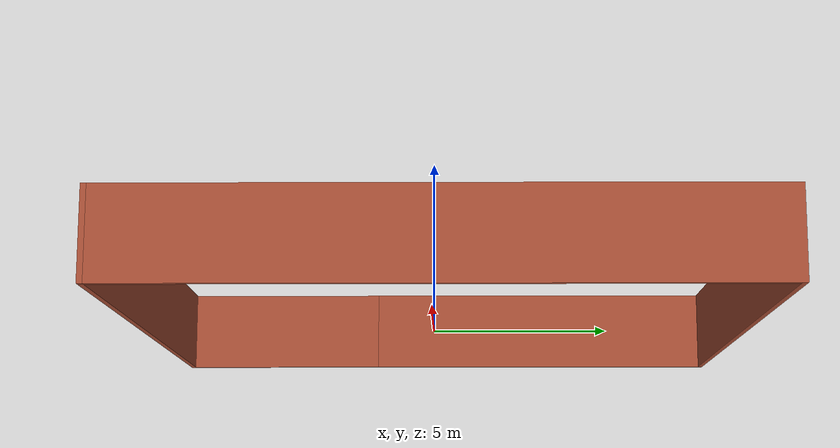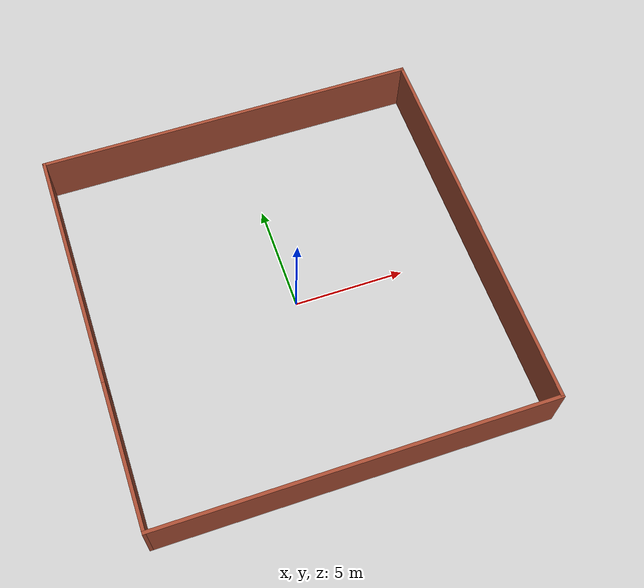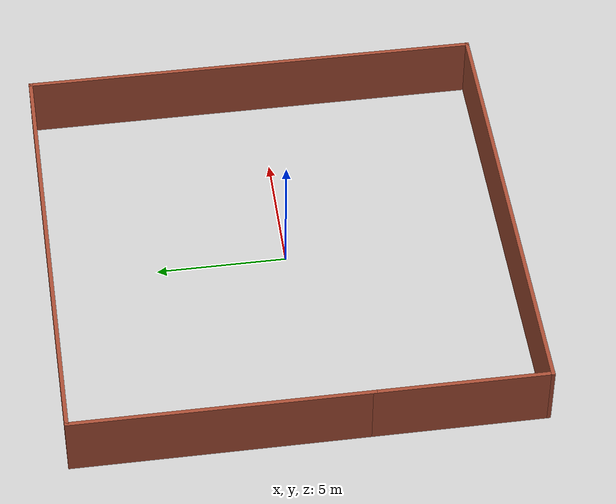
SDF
<?xml version='1.0'?>
<sdf version='1.6'>
  <model name='course_walls_1'>
    <pose frame=''>-0.295293 0.301782 0 0 -0 0</pose>
    <link name='Wall_2'>
      <collision name='Wall_2_Collision'>
        <geometry>
          <box>
            <size>11.25 0.15 2.5</size>
          </box>
        </geometry>
        <pose frame=''>0 0 1.25 0 -0 0</pose>
      </collision>
      <visual name='Wall_2_Visual'>
        <pose frame=''>0 0 1.25 0 -0 0</pose>
        <geometry>
          <box>
            <size>11.25 0.15 2.5</size>
          </box>
        </geometry>
        <material>
          <script>
            <uri>file://media/materials/scripts/gazebo.material</uri>
            <name>Gazebo/Bricks</name>
          </script>
          <ambient>1 1 1 1</ambient>
        </material>
      </visual>
      <pose frame=''>-8.675 3.25 0 0 -0 1.5708</pose>
    </link>
    <link name='Wall_3'>
      <collision name='Wall_3_Collision'>
        <geometry>
          <box>
            <size>17.5 0.15 2.5</size>
          </box>
        </geometry>
        <pose frame=''>0 0 1.25 0 -0 0</pose>
      </collision>
      <visual name='Wall_3_Visual'>
        <pose frame=''>0 0 1.25 0 -0 0</pose>
        <geometry>
          <box>
            <size>17.5 0.15 2.5</size>
          </box>
        </geometry>
        <material>
          <script>
            <uri>file://media/materials/scripts/gazebo.material</uri>
            <name>Gazebo/Bricks</name>
          </script>
          <ambient>1 1 1 1</ambient>
        </material>
      </visual>
      <pose frame=''>0 8.8 0 0 -0 0</pose>
    </link>
    <link name='Wall_4'>
      <collision name='Wall_4_Collision'>
        <geometry>
          <box>
            <size>17.75 0.15 2.5</size>
          </box>
        </geometry>
        <pose frame=''>0 0 1.25 0 -0 0</pose>
      </collision>
      <visual name='Wall_4_Visual'>
        <pose frame=''>0 0 1.25 0 -0 0</pose>
        <geometry>
          <box>
            <size>17.75 0.15 2.5</size>
          </box>
        </geometry>
        <material>
          <script>
            <uri>file://media/materials/scripts/gazebo.material</uri>
            <name>Gazebo/Bricks</name>
          </script>
          <ambient>1 1 1 1</ambient>
        </material>
      </visual>
      <pose frame=''>8.675 0 0 0 0 -1.5708</pose>
    </link>
    <link name='Wall_5'>
      <collision name='Wall_5_Collision'>
        <geometry>
          <box>
            <size>17.5 0.15 2.5</size>
          </box>
        </geometry>
        <pose frame=''>0 0 1.25 0 -0 0</pose>
      </collision>
      <visual name='Wall_5_Visual'>
        <pose frame=''>0 0 1.25 0 -0 0</pose>
        <geometry>
          <box>
            <size>17.5 0.15 2.5</size>
          </box>
        </geometry>
        <material>
          <script>
            <uri>file://media/materials/scripts/gazebo.material</uri>
            <name>Gazebo/Bricks</name>
          </script>
          <ambient>1 1 1 1</ambient>
        </material>
      </visual>
      <pose frame=''>0 -8.8 0 0 -0 3.14159</pose>
    </link>
    <link name='Wall_6'>
      <collision name='Wall_6_Collision'>
        <geometry>
          <box>
            <size>6.65 0.15 2.5</size>
          </box>
        </geometry>
        <pose frame=''>0 0 1.25 0 -0 0</pose>
      </collision>
      <visual name='Wall_6_Visual'>
        <pose frame=''>0 0 1.25 0 -0 0</pose>
        <geometry>
          <box>
            <size>6.65 0.15 2.5</size>
          </box>
        </geometry>
        <material>
          <script>
            <uri>file://media/materials/scripts/gazebo.material</uri>
            <name>Gazebo/Bricks</name>
          </script>
          <ambient>1 1 1 1</ambient>
        </material>
      </visual>
      <pose frame=''>-8.675 -5.55 0 0 -0 1.5708</pose>
    </link>
    <static>1</static>
  </model>
</sdf>
